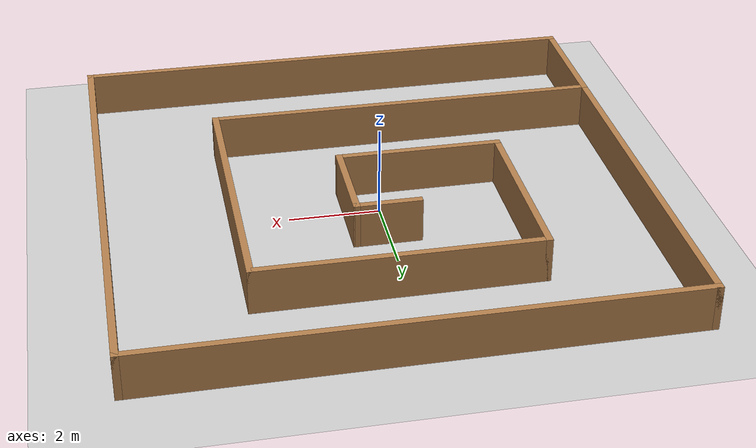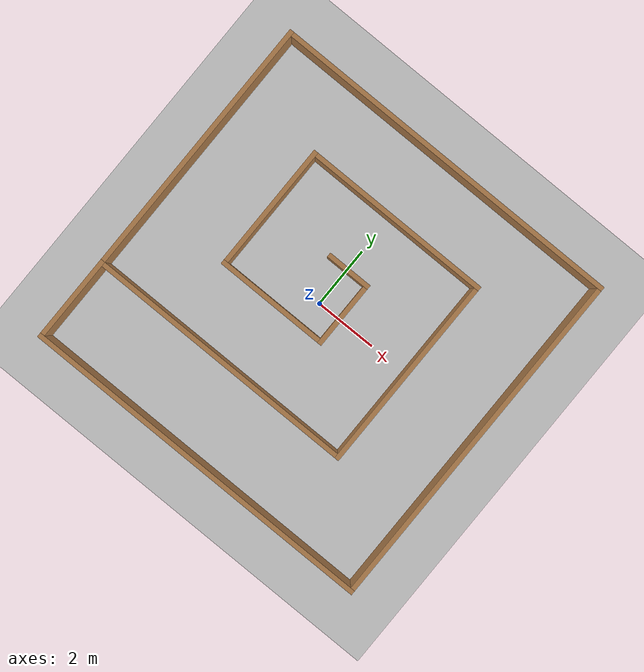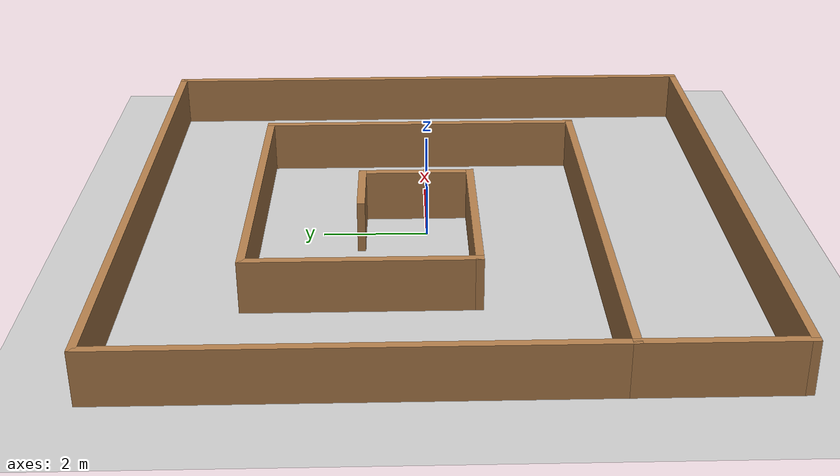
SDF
<sdf version='1.7'>
  <world name='default'>
    <light name='sun' type='directional'>
      <cast_shadows>1</cast_shadows>
      <pose>0 0 10 0 -0 0</pose>
      <diffuse>0.8 0.8 0.8 1</diffuse>
      <specular>0.2 0.2 0.2 1</specular>
      <attenuation>
        <range>1000</range>
        <constant>0.9</constant>
        <linear>0.01</linear>
        <quadratic>0.001</quadratic>
      </attenuation>
      <direction>-0.5 0.1 -0.9</direction>
      <spot>
        <inner_angle>0</inner_angle>
        <outer_angle>0</outer_angle>
        <falloff>0</falloff>
      </spot>
    </light>
    <model name='ground_plane'>
      <static>1</static>
      <link name='link'>
        <collision name='collision'>
          <geometry>
            <plane>
              <normal>0 0 1</normal>
              <size>100 100</size>
            </plane>
          </geometry>
          <surface>
            <contact>
              <collide_bitmask>65535</collide_bitmask>
              <ode/>
            </contact>
            <friction>
              <ode>
                <mu>100</mu>
                <mu2>50</mu2>
              </ode>
              <torsional>
                <ode/>
              </torsional>
            </friction>
            <bounce/>
          </surface>
          <max_contacts>10</max_contacts>
        </collision>
        <visual name='visual'>
          <cast_shadows>0</cast_shadows>
          <geometry>
            <plane>
              <normal>0 0 1</normal>
              <size>100 100</size>
            </plane>
          </geometry>
          <material>
            <script>
              <uri>file://media/materials/scripts/gazebo.material</uri>
              <name>Gazebo/Grey</name>
            </script>
          </material>
        </visual>
        <self_collide>0</self_collide>
        <enable_wind>0</enable_wind>
        <kinematic>0</kinematic>
      </link>
    </model>
    <gravity>0 0 -9.8</gravity>
    <magnetic_field>6e-06 2.3e-05 -4.2e-05</magnetic_field>
    <atmosphere type='adiabatic'/>
    <physics type='ode'>
      <max_step_size>0.001</max_step_size>
      <real_time_factor>1</real_time_factor>
      <real_time_update_rate>1000</real_time_update_rate>
    </physics>
    <scene>
      <ambient>0.4 0.4 0.4 1</ambient>
      <background>0.7 0.7 0.7 1</background>
      <shadows>1</shadows>
    </scene>
    <wind/>
    <spherical_coordinates>
      <surface_model>EARTH_WGS84</surface_model>
      <latitude_deg>0</latitude_deg>
      <longitude_deg>0</longitude_deg>
      <elevation>0</elevation>
      <heading_deg>0</heading_deg>
    </spherical_coordinates>
    <model name='aro_medium_1'>
      <pose>0.19 -0.175 0 0 -0 0</pose>
      <link name='Wall_0'>
        <collision name='Wall_0_Collision'>
          <geometry>
            <box>
              <size>1.5 0.15 1</size>
            </box>
          </geometry>
          <pose>0 0 0.5 0 -0 0</pose>
          <max_contacts>10</max_contacts>
          <surface>
            <contact>
              <ode/>
            </contact>
            <bounce/>
            <friction>
              <torsional>
                <ode/>
              </torsional>
              <ode/>
            </friction>
          </surface>
        </collision>
        <visual name='Wall_0_Visual'>
          <pose>0 0 0.5 0 -0 0</pose>
          <geometry>
            <box>
              <size>1.5 0.15 1</size>
            </box>
          </geometry>
          <material>
            <script>
              <uri>file://media/materials/scripts/gazebo.material</uri>
              <name>Gazebo/Wood</name>
            </script>
            <ambient>1 1 1 1</ambient>
          </material>
          <meta>
            <layer>0</layer>
          </meta>
        </visual>
        <pose>-0.125 1.425 0 0 -0 0</pose>
        <self_collide>0</self_collide>
        <enable_wind>0</enable_wind>
        <kinematic>0</kinematic>
      </link>
      <link name='Wall_1'>
        <collision name='Wall_1_Collision'>
          <geometry>
            <box>
              <size>2.25 0.15 1</size>
            </box>
          </geometry>
          <pose>0 0 0.5 0 -0 0</pose>
          <max_contacts>10</max_contacts>
          <surface>
            <contact>
              <ode/>
            </contact>
            <bounce/>
            <friction>
              <torsional>
                <ode/>
              </torsional>
              <ode/>
            </friction>
          </surface>
        </collision>
        <visual name='Wall_1_Visual'>
          <pose>0 0 0.5 0 -0 0</pose>
          <geometry>
            <box>
              <size>2.25 0.15 1</size>
            </box>
          </geometry>
          <material>
            <script>
              <uri>file://media/materials/scripts/gazebo.material</uri>
              <name>Gazebo/Wood</name>
            </script>
            <ambient>1 1 1 1</ambient>
          </material>
          <meta>
            <layer>0</layer>
          </meta>
        </visual>
        <pose>0.55 0.375 0 0 -0 -1.5708</pose>
        <self_collide>0</self_collide>
        <enable_wind>0</enable_wind>
        <kinematic>0</kinematic>
      </link>
      <link name='Wall_10'>
        <collision name='Wall_10_Collision'>
          <geometry>
            <box>
              <size>11.75 0.15 1</size>
            </box>
          </geometry>
          <pose>0 0 0.5 0 -0 0</pose>
          <max_contacts>10</max_contacts>
          <surface>
            <contact>
              <ode/>
            </contact>
            <bounce/>
            <friction>
              <torsional>
                <ode/>
              </torsional>
              <ode/>
            </friction>
          </surface>
        </collision>
        <visual name='Wall_10_Visual'>
          <pose>0 0 0.5 0 -0 0</pose>
          <geometry>
            <box>
              <size>11.75 0.15 1</size>
            </box>
          </geometry>
          <material>
            <script>
              <uri>file://media/materials/scripts/gazebo.material</uri>
              <name>Gazebo/Wood</name>
            </script>
            <ambient>1 1 1 1</ambient>
          </material>
          <meta>
            <layer>0</layer>
          </meta>
        </visual>
        <pose>0 -5.675 0 0 -0 3.14159</pose>
        <self_collide>0</self_collide>
        <enable_wind>0</enable_wind>
        <kinematic>0</kinematic>
      </link>
      <link name='Wall_11'>
        <collision name='Wall_11_Collision'>
          <geometry>
            <box>
              <size>2.9 0.15 1</size>
            </box>
          </geometry>
          <pose>0 0 0.5 0 -0 0</pose>
          <max_contacts>10</max_contacts>
          <surface>
            <contact>
              <ode/>
            </contact>
            <bounce/>
            <friction>
              <torsional>
                <ode/>
              </torsional>
              <ode/>
            </friction>
          </surface>
        </collision>
        <visual name='Wall_11_Visual'>
          <pose>0 0 0.5 0 -0 0</pose>
          <geometry>
            <box>
              <size>2.9 0.15 1</size>
            </box>
          </geometry>
          <material>
            <script>
              <uri>file://media/materials/scripts/gazebo.material</uri>
              <name>Gazebo/Wood</name>
            </script>
            <ambient>1 1 1 1</ambient>
          </material>
          <meta>
            <layer>0</layer>
          </meta>
        </visual>
        <pose>-5.8 -4.3 0 0 -0 1.5708</pose>
        <self_collide>0</self_collide>
        <enable_wind>0</enable_wind>
        <kinematic>0</kinematic>
      </link>
      <link name='Wall_2'>
        <collision name='Wall_2_Collision'>
          <geometry>
            <box>
              <size>3.75 0.15 1</size>
            </box>
          </geometry>
          <pose>0 0 0.5 0 -0 0</pose>
          <max_contacts>10</max_contacts>
          <surface>
            <contact>
              <ode/>
            </contact>
            <bounce/>
            <friction>
              <torsional>
                <ode/>
              </torsional>
              <ode/>
            </friction>
          </surface>
        </collision>
        <visual name='Wall_2_Visual'>
          <pose>0 0 0.5 0 -0 0</pose>
          <geometry>
            <box>
              <size>3.75 0.15 1</size>
            </box>
          </geometry>
          <material>
            <script>
              <uri>file://media/materials/scripts/gazebo.material</uri>
              <name>Gazebo/Wood</name>
            </script>
            <ambient>1 1 1 1</ambient>
          </material>
          <meta>
            <layer>0</layer>
          </meta>
        </visual>
        <pose>-1.25 -0.675 0 0 -0 3.14159</pose>
        <self_collide>0</self_collide>
        <enable_wind>0</enable_wind>
        <kinematic>0</kinematic>
      </link>
      <link name='Wall_3'>
        <collision name='Wall_3_Collision'>
          <geometry>
            <box>
              <size>4.25 0.15 1</size>
            </box>
          </geometry>
          <pose>0 0 0.5 0 -0 0</pose>
          <max_contacts>10</max_contacts>
          <surface>
            <contact>
              <ode/>
            </contact>
            <bounce/>
            <friction>
              <torsional>
                <ode/>
              </torsional>
              <ode/>
            </friction>
          </surface>
        </collision>
        <visual name='Wall_3_Visual'>
          <pose>0 0 0.5 0 -0 0</pose>
          <geometry>
            <box>
              <size>4.25 0.15 1</size>
            </box>
          </geometry>
          <material>
            <script>
              <uri>file://media/materials/scripts/gazebo.material</uri>
              <name>Gazebo/Wood</name>
            </script>
            <ambient>1 1 1 1</ambient>
          </material>
          <meta>
            <layer>0</layer>
          </meta>
        </visual>
        <pose>-3.05 1.375 0 0 -0 1.5708</pose>
        <self_collide>0</self_collide>
        <enable_wind>0</enable_wind>
        <kinematic>0</kinematic>
      </link>
      <link name='Wall_4'>
        <collision name='Wall_4_Collision'>
          <geometry>
            <box>
              <size>6.25 0.15 1</size>
            </box>
          </geometry>
          <pose>0 0 0.5 0 -0 0</pose>
          <max_contacts>10</max_contacts>
          <surface>
            <contact>
              <ode/>
            </contact>
            <bounce/>
            <friction>
              <torsional>
                <ode/>
              </torsional>
              <ode/>
            </friction>
          </surface>
        </collision>
        <visual name='Wall_4_Visual'>
          <pose>0 0 0.5 0 -0 0</pose>
          <geometry>
            <box>
              <size>6.25 0.15 1</size>
            </box>
          </geometry>
          <material>
            <script>
              <uri>file://media/materials/scripts/gazebo.material</uri>
              <name>Gazebo/Wood</name>
            </script>
            <ambient>1 1 1 1</ambient>
          </material>
          <meta>
            <layer>0</layer>
          </meta>
        </visual>
        <pose>0 3.425 0 0 -0 0</pose>
        <self_collide>0</self_collide>
        <enable_wind>0</enable_wind>
        <kinematic>0</kinematic>
      </link>
      <link name='Wall_5'>
        <collision name='Wall_5_Collision'>
          <geometry>
            <box>
              <size>6.5 0.15 1</size>
            </box>
          </geometry>
          <pose>0 0 0.5 0 -0 0</pose>
          <max_contacts>10</max_contacts>
          <surface>
            <contact>
              <ode/>
            </contact>
            <bounce/>
            <friction>
              <torsional>
                <ode/>
              </torsional>
              <ode/>
            </friction>
          </surface>
        </collision>
        <visual name='Wall_5_Visual'>
          <pose>0 0 0.5 0 -0 0</pose>
          <geometry>
            <box>
              <size>6.5 0.15 1</size>
            </box>
          </geometry>
          <material>
            <script>
              <uri>file://media/materials/scripts/gazebo.material</uri>
              <name>Gazebo/Wood</name>
            </script>
            <ambient>1 1 1 1</ambient>
          </material>
          <meta>
            <layer>0</layer>
          </meta>
        </visual>
        <pose>3.05 0.25 0 0 -0 -1.5708</pose>
        <self_collide>0</self_collide>
        <enable_wind>0</enable_wind>
        <kinematic>0</kinematic>
      </link>
      <link name='Wall_6'>
        <collision name='Wall_6_Collision'>
          <geometry>
            <box>
              <size>9 0.15 1</size>
            </box>
          </geometry>
          <pose>0 0 0.5 0 -0 0</pose>
          <max_contacts>10</max_contacts>
          <surface>
            <contact>
              <ode/>
            </contact>
            <bounce/>
            <friction>
              <torsional>
                <ode/>
              </torsional>
              <ode/>
            </friction>
          </surface>
        </collision>
        <visual name='Wall_6_Visual'>
          <pose>0 0 0.5 0 -0 0</pose>
          <geometry>
            <box>
              <size>9 0.15 1</size>
            </box>
          </geometry>
          <material>
            <script>
              <uri>file://media/materials/scripts/gazebo.material</uri>
              <name>Gazebo/Wood</name>
            </script>
            <ambient>1 1 1 1</ambient>
          </material>
          <meta>
            <layer>0</layer>
          </meta>
        </visual>
        <pose>-1.375 -2.925 0 0 -0 3.14159</pose>
        <self_collide>0</self_collide>
        <enable_wind>0</enable_wind>
        <kinematic>0</kinematic>
      </link>
      <link name='Wall_7'>
        <collision name='Wall_7_Collision'>
          <geometry>
            <box>
              <size>8.75 0.15 1</size>
            </box>
          </geometry>
          <pose>0 0 0.5 0 -0 0</pose>
          <max_contacts>10</max_contacts>
          <surface>
            <contact>
              <ode/>
            </contact>
            <bounce/>
            <friction>
              <torsional>
                <ode/>
              </torsional>
              <ode/>
            </friction>
          </surface>
        </collision>
        <visual name='Wall_7_Visual'>
          <pose>0 0 0.5 0 -0 0</pose>
          <geometry>
            <box>
              <size>8.75 0.15 1</size>
            </box>
          </geometry>
          <material>
            <script>
              <uri>file://media/materials/scripts/gazebo.material</uri>
              <name>Gazebo/Wood</name>
            </script>
            <ambient>1 1 1 1</ambient>
          </material>
          <meta>
            <layer>0</layer>
          </meta>
        </visual>
        <pose>-5.8 1.375 0 0 -0 1.5708</pose>
        <self_collide>0</self_collide>
        <enable_wind>0</enable_wind>
        <kinematic>0</kinematic>
      </link>
      <link name='Wall_8'>
        <collision name='Wall_8_Collision'>
          <geometry>
            <box>
              <size>11.75 0.15 1</size>
            </box>
          </geometry>
          <pose>0 0 0.5 0 -0 0</pose>
          <max_contacts>10</max_contacts>
          <surface>
            <contact>
              <ode/>
            </contact>
            <bounce/>
            <friction>
              <torsional>
                <ode/>
              </torsional>
              <ode/>
            </friction>
          </surface>
        </collision>
        <visual name='Wall_8_Visual'>
          <pose>0 0 0.5 0 -0 0</pose>
          <geometry>
            <box>
              <size>11.75 0.15 1</size>
            </box>
          </geometry>
          <material>
            <script>
              <uri>file://media/materials/scripts/gazebo.material</uri>
              <name>Gazebo/Wood</name>
            </script>
            <ambient>1 1 1 1</ambient>
          </material>
          <meta>
            <layer>0</layer>
          </meta>
        </visual>
        <pose>0 5.675 0 0 -0 0</pose>
        <self_collide>0</self_collide>
        <enable_wind>0</enable_wind>
        <kinematic>0</kinematic>
      </link>
      <link name='Wall_9'>
        <collision name='Wall_9_Collision'>
          <geometry>
            <box>
              <size>11.5 0.15 1</size>
            </box>
          </geometry>
          <pose>0 0 0.5 0 -0 0</pose>
          <max_contacts>10</max_contacts>
          <surface>
            <contact>
              <ode/>
            </contact>
            <bounce/>
            <friction>
              <torsional>
                <ode/>
              </torsional>
              <ode/>
            </friction>
          </surface>
        </collision>
        <visual name='Wall_9_Visual'>
          <pose>0 0 0.5 0 -0 0</pose>
          <geometry>
            <box>
              <size>11.5 0.15 1</size>
            </box>
          </geometry>
          <material>
            <script>
              <uri>file://media/materials/scripts/gazebo.material</uri>
              <name>Gazebo/Wood</name>
            </script>
            <ambient>1 1 1 1</ambient>
          </material>
          <meta>
            <layer>0</layer>
          </meta>
        </visual>
        <pose>5.8 -0 0 0 -0 -1.5708</pose>
        <self_collide>0</self_collide>
        <enable_wind>0</enable_wind>
        <kinematic>0</kinematic>
      </link>
      <static>1</static>
    </model>
    <gui fullscreen='0'>
      <camera name='user_camera'>
        <pose>12.0143 0.940383 18.3959 -0 1.01964 -3.127</pose>
        <view_controller>orbit</view_controller>
        <projection_type>perspective</projection_type>
      </camera>
    </gui>
  </world>
</sdf>
